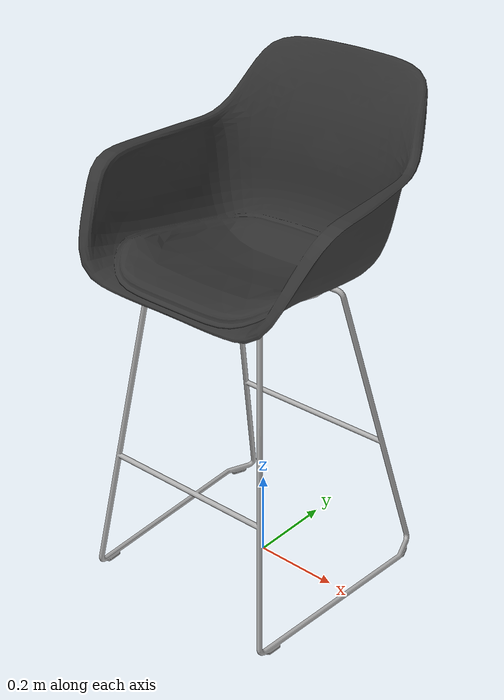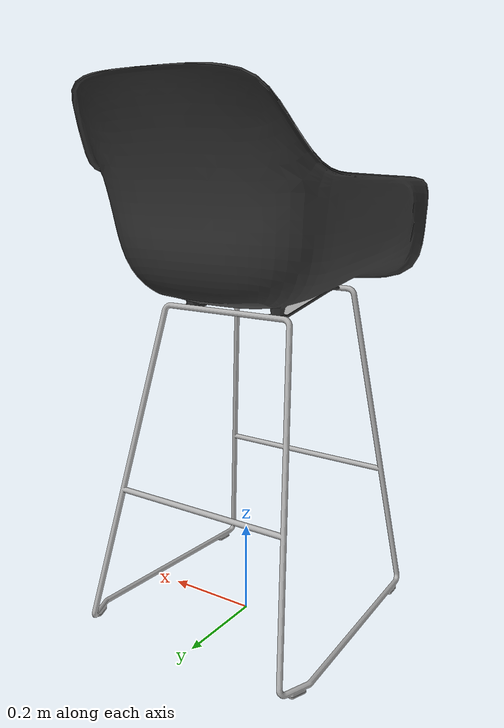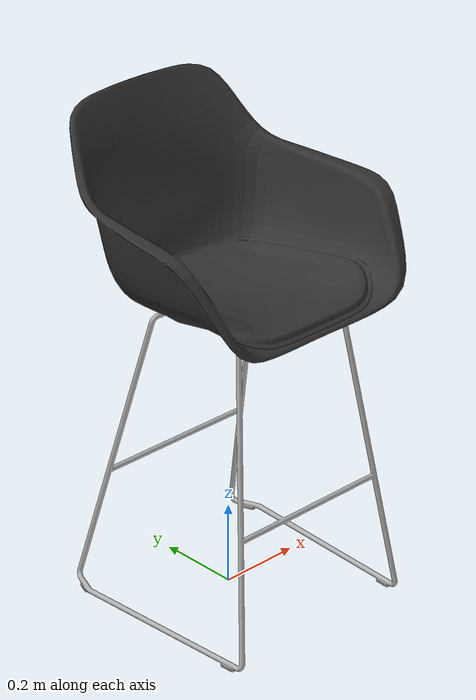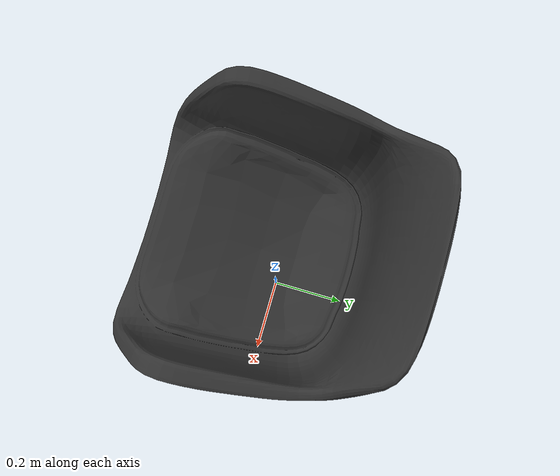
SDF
<?xml version='1.0'?>
<sdf version='1.6'>
  <model name='kitchen_chair'>
    <link name='link_3'>
      <pose frame=''>0.000751 0.001965 0 0 -0 0</pose>
         <visual name='visual'>
        <pose frame=''>0 0 0 0 -0 0</pose>
        <geometry>
          <mesh>
            <uri>model://kitchen_chair/meshes/base.dae</uri>
            <scale>1 1 1</scale>
          </mesh>
        </geometry>
        <material>
          <lighting>1</lighting>
          <ambient>0.7 0.7 0.7 1</ambient>
          <diffuse>0.7 0.7 0.7 1</diffuse>
          <specular>0.01 0.01 0.01 1</specular>
          <emissive>0 0 0 1</emissive>
          <shader type='vertex'>
            <normal_map>__default__</normal_map>
          </shader>
        </material>
        <cast_shadows>1</cast_shadows>
        <transparency>0</transparency>
      </visual>
      <collision name='collision'>
        <laser_retro>0</laser_retro>
        <max_contacts>10</max_contacts>
        <pose frame=''>0 0 0 0 -0 0</pose>
        <geometry>
          <mesh>
            <uri>model://kitchen_chair/meshes/base.dae</uri>
            <scale>1 1 1</scale>
          </mesh>
        </geometry>
       </collision>
    </link>
    <link name='link_4'>
      <pose frame=''>-0.000751 -0.001965 0 0 -0 0</pose>
       <visual name='visual'>
        <pose frame=''>0 0 0 0 -0 0</pose>
        <geometry>
          <mesh>
            <uri>model://kitchen_chair/meshes/seat.dae</uri>
            <scale>1 1 1</scale>
          </mesh>
        </geometry>
        <material>
          <lighting>1</lighting>
          <ambient>0 0 0 1</ambient>
          <diffuse>0.2 0.2 0.2 1</diffuse>
          <specular>0.01 0.01 0.01 1</specular>
          <emissive>0 0 0 1</emissive>
          <shader type='vertex'>
            <normal_map>__default__</normal_map>
          </shader>
        </material>
        <cast_shadows>1</cast_shadows>
        <transparency>0</transparency>
      </visual>
      <collision name='collision'>
        <laser_retro>0</laser_retro>
        <max_contacts>10</max_contacts>
        <pose frame=''>0 0 0 0 -0 0</pose>
        <geometry>
          <mesh>
            <uri>model://kitchen_chair/meshes/seat.dae</uri>
            <scale>1 1 1</scale>
          </mesh>
        </geometry>
       </collision>
    </link>
    <static>1</static>
    <allow_auto_disable>1</allow_auto_disable>
  </model>
</sdf>
